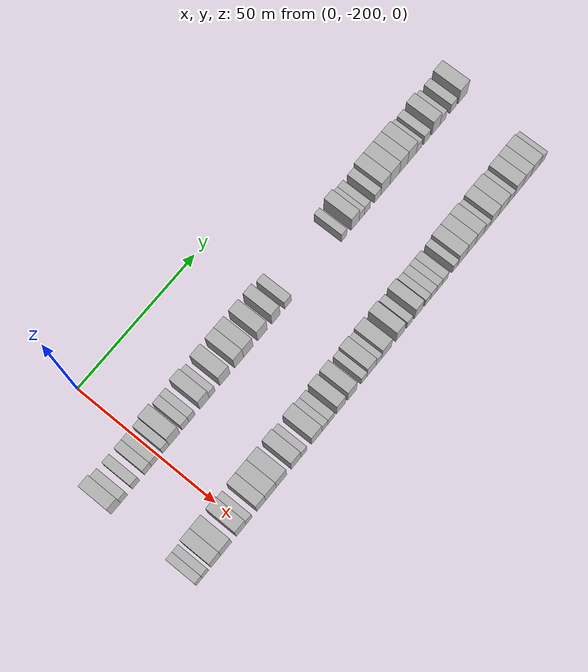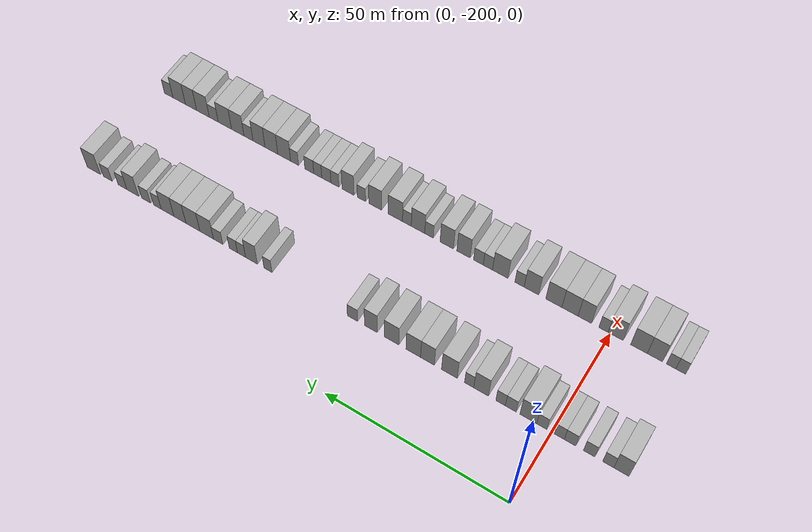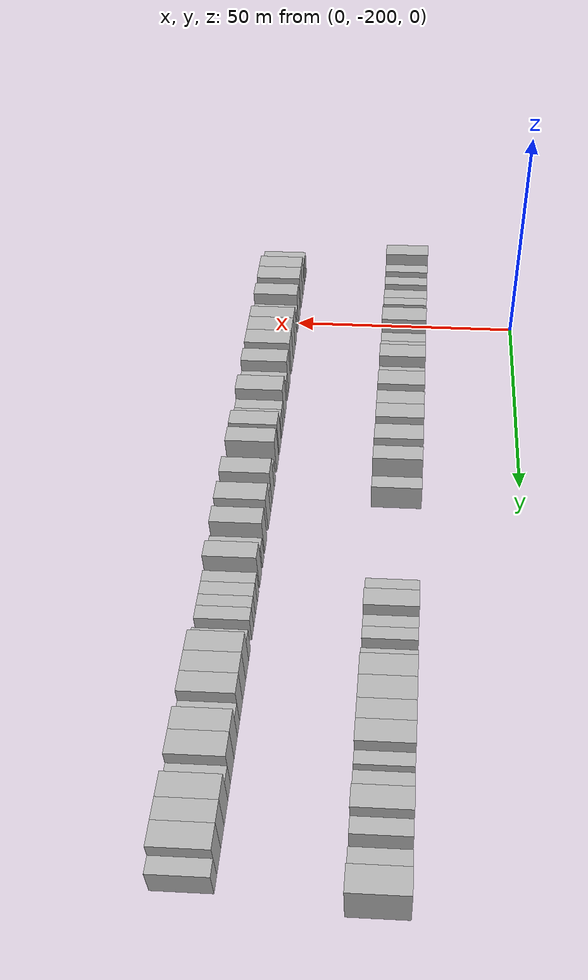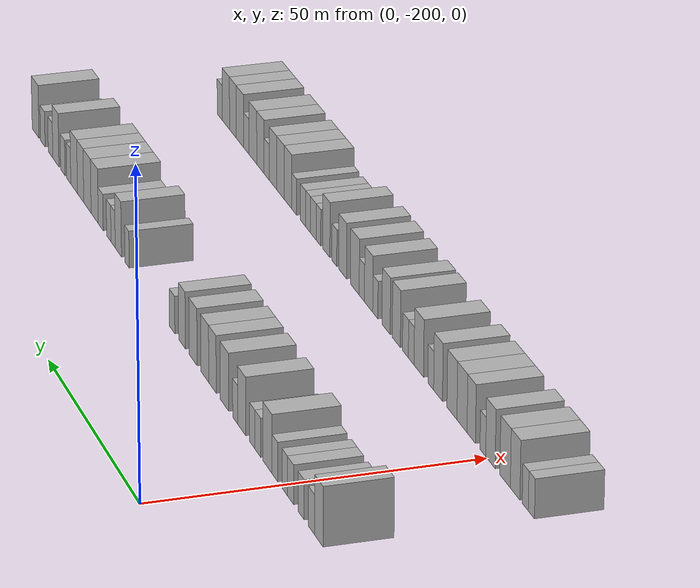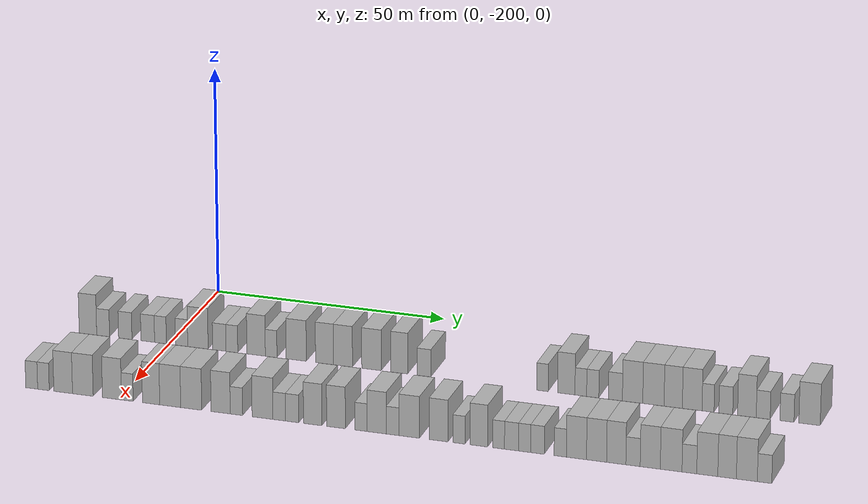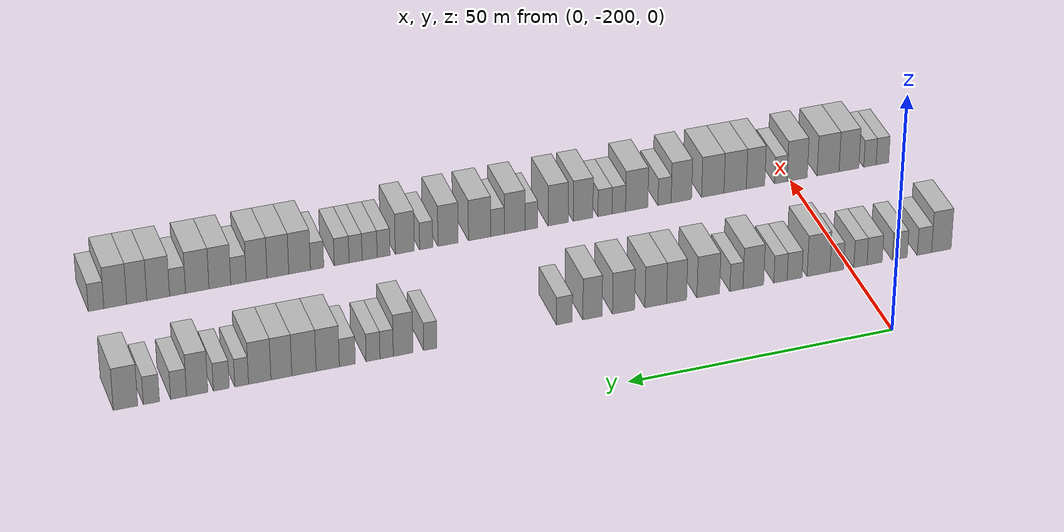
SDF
<sdf version="1.6">
 <world name="default">
  <model name="building_1">
   <static>1</static>
   <pose>25.0000 -218.0600 0 0.000000 0.000000 0.000000</pose>
   <link name="link">
    <pose>0 0 4.50 0 0 0</pose>
    <collision name="collision"><geometry><box><size>10.0000 3.8800 9.0000</size></box></geometry></collision>
    <visual name="visual">
     <cast_shadows>0</cast_shadows>
     <geometry><box><size>10.0000 3.8800 9.0000</size></box></geometry>
     <material>
      <script>
       <uri>model://HANNAS_wall/materials/scripts</uri>
       <uri>model://HANNAS_wall/materials/textures</uri>
       <name>vrc/HANNAS_wall</name>
      </script>
     </material>
    </visual>
   </link>
  </model>
  <model name="building_2">
   <static>1</static>
   <pose>25.0000 -214.6943 0 0.000000 0.000000 0.000000</pose>
   <link name="link">
    <pose>0 0 3.00 0 0 0</pose>
    <collision name="collision"><geometry><box><size>10.0000 2.8513 6.0000</size></box></geometry></collision>
    <visual name="visual">
     <cast_shadows>0</cast_shadows>
     <geometry><box><size>10.0000 2.8513 6.0000</size></box></geometry>
     <material>
      <script>
       <uri>model://HANNAS_wall/materials/scripts</uri>
       <uri>model://HANNAS_wall/materials/textures</uri>
       <name>vrc/HANNAS_wall</name>
      </script>
     </material>
    </visual>
   </link>
  </model>
  <model name="building_3">
   <static>1</static>
   <pose>25.0000 -209.7895 0 0.000000 0.000000 0.000000</pose>
   <link name="link">
    <pose>0 0 3.00 0 0 0</pose>
    <collision name="collision"><geometry><box><size>10.0000 2.9583 6.0000</size></box></geometry></collision>
    <visual name="visual">
     <cast_shadows>0</cast_shadows>
     <geometry><box><size>10.0000 2.9583 6.0000</size></box></geometry>
     <material>
      <script>
       <uri>model://HANNAS_wall/materials/scripts</uri>
       <uri>model://HANNAS_wall/materials/textures</uri>
       <name>vrc/HANNAS_wall</name>
      </script>
     </material>
    </visual>
   </link>
  </model>
  <model name="building_4">
   <static>1</static>
   <pose>25.0000 -204.8114 0 0.000000 0.000000 0.000000</pose>
   <link name="link">
    <pose>0 0 3.00 0 0 0</pose>
    <collision name="collision"><geometry><box><size>10.0000 2.9979 6.0000</size></box></geometry></collision>
    <visual name="visual">
     <cast_shadows>0</cast_shadows>
     <geometry><box><size>10.0000 2.9979 6.0000</size></box></geometry>
     <material>
      <script>
       <uri>model://HANNAS_wall/materials/scripts</uri>
       <uri>model://HANNAS_wall/materials/textures</uri>
       <name>vrc/HANNAS_wall</name>
      </script>
     </material>
    </visual>
   </link>
  </model>
  <model name="building_5">
   <static>1</static>
   <pose>25.0000 -202.0157 0 0.000000 0.000000 0.000000</pose>
   <link name="link">
    <pose>0 0 3.00 0 0 0</pose>
    <collision name="collision"><geometry><box><size>10.0000 2.5935 6.0000</size></box></geometry></collision>
    <visual name="visual">
     <cast_shadows>0</cast_shadows>
     <geometry><box><size>10.0000 2.5935 6.0000</size></box></geometry>
     <material>
      <script>
       <uri>model://HANNAS_wall/materials/scripts</uri>
       <uri>model://HANNAS_wall/materials/textures</uri>
       <name>vrc/HANNAS_wall</name>
      </script>
     </material>
    </visual>
   </link>
  </model>
  <model name="building_6">
   <static>1</static>
   <pose>25.0000 -197.3693 0 0.000000 0.000000 0.000000</pose>
   <link name="link">
    <pose>0 0 3.00 0 0 0</pose>
    <collision name="collision"><geometry><box><size>10.0000 2.6991 6.0000</size></box></geometry></collision>
    <visual name="visual">
     <cast_shadows>0</cast_shadows>
     <geometry><box><size>10.0000 2.6991 6.0000</size></box></geometry>
     <material>
      <script>
       <uri>model://HANNAS_wall/materials/scripts</uri>
       <uri>model://HANNAS_wall/materials/textures</uri>
       <name>vrc/HANNAS_wall</name>
      </script>
     </material>
    </visual>
   </link>
  </model>
  <model name="building_7">
   <static>1</static>
   <pose>25.0000 -193.7817 0 0.000000 0.000000 0.000000</pose>
   <link name="link">
    <pose>0 0 4.50 0 0 0</pose>
    <collision name="collision"><geometry><box><size>10.0000 4.4761 9.0000</size></box></geometry></collision>
    <visual name="visual">
     <cast_shadows>0</cast_shadows>
     <geometry><box><size>10.0000 4.4761 9.0000</size></box></geometry>
     <material>
      <script>
       <uri>model://HANNAS_wall/materials/scripts</uri>
       <uri>model://HANNAS_wall/materials/textures</uri>
       <name>vrc/HANNAS_wall</name>
      </script>
     </material>
    </visual>
   </link>
  </model>
  <model name="building_8">
   <static>1</static>
   <pose>25.0000 -189.0932 0 0.000000 0.000000 0.000000</pose>
   <link name="link">
    <pose>0 0 3.00 0 0 0</pose>
    <collision name="collision"><geometry><box><size>10.0000 2.9010 6.0000</size></box></geometry></collision>
    <visual name="visual">
     <cast_shadows>0</cast_shadows>
     <geometry><box><size>10.0000 2.9010 6.0000</size></box></geometry>
     <material>
      <script>
       <uri>model://HANNAS_wall/materials/scripts</uri>
       <uri>model://HANNAS_wall/materials/textures</uri>
       <name>vrc/HANNAS_wall</name>
      </script>
     </material>
    </visual>
   </link>
  </model>
  <model name="building_9">
   <static>1</static>
   <pose>25.0000 -186.3501 0 0.000000 0.000000 0.000000</pose>
   <link name="link">
    <pose>0 0 3.00 0 0 0</pose>
    <collision name="collision"><geometry><box><size>10.0000 2.5852 6.0000</size></box></geometry></collision>
    <visual name="visual">
     <cast_shadows>0</cast_shadows>
     <geometry><box><size>10.0000 2.5852 6.0000</size></box></geometry>
     <material>
      <script>
       <uri>model://HANNAS_wall/materials/scripts</uri>
       <uri>model://HANNAS_wall/materials/textures</uri>
       <name>vrc/HANNAS_wall</name>
      </script>
     </material>
    </visual>
   </link>
  </model>
  <model name="building_10">
   <static>1</static>
   <pose>25.0000 -181.0532 0 0.000000 0.000000 0.000000</pose>
   <link name="link">
    <pose>0 0 4.50 0 0 0</pose>
    <collision name="collision"><geometry><box><size>10.0000 4.0086 9.0000</size></box></geometry></collision>
    <visual name="visual">
     <cast_shadows>0</cast_shadows>
     <geometry><box><size>10.0000 4.0086 9.0000</size></box></geometry>
     <material>
      <script>
       <uri>model://HANNAS_wall/materials/scripts</uri>
       <uri>model://HANNAS_wall/materials/textures</uri>
       <name>vrc/HANNAS_wall</name>
      </script>
     </material>
    </visual>
   </link>
  </model>
  <model name="building_11">
   <static>1</static>
   <pose>25.0000 -177.7852 0 0.000000 0.000000 0.000000</pose>
   <link name="link">
    <pose>0 0 3.00 0 0 0</pose>
    <collision name="collision"><geometry><box><size>10.0000 2.5274 6.0000</size></box></geometry></collision>
    <visual name="visual">
     <cast_shadows>0</cast_shadows>
     <geometry><box><size>10.0000 2.5274 6.0000</size></box></geometry>
     <material>
      <script>
       <uri>model://HANNAS_wall/materials/scripts</uri>
       <uri>model://HANNAS_wall/materials/textures</uri>
       <name>vrc/HANNAS_wall</name>
      </script>
     </material>
    </visual>
   </link>
  </model>
  <model name="building_12">
   <static>1</static>
   <pose>25.0000 -172.3337 0 0.000000 0.000000 0.000000</pose>
   <link name="link">
    <pose>0 0 4.50 0 0 0</pose>
    <collision name="collision"><geometry><box><size>10.0000 4.3756 9.0000</size></box></geometry></collision>
    <visual name="visual">
     <cast_shadows>0</cast_shadows>
     <geometry><box><size>10.0000 4.3756 9.0000</size></box></geometry>
     <material>
      <script>
       <uri>model://HANNAS_wall/materials/scripts</uri>
       <uri>model://HANNAS_wall/materials/textures</uri>
       <name>vrc/HANNAS_wall</name>
      </script>
     </material>
    </visual>
   </link>
  </model>
  <model name="building_13">
   <static>1</static>
   <pose>25.0000 -166.2220 0 0.000000 0.000000 0.000000</pose>
   <link name="link">
    <pose>0 0 4.50 0 0 0</pose>
    <collision name="collision"><geometry><box><size>10.0000 3.8479 9.0000</size></box></geometry></collision>
    <visual name="visual">
     <cast_shadows>0</cast_shadows>
     <geometry><box><size>10.0000 3.8479 9.0000</size></box></geometry>
     <material>
      <script>
       <uri>model://HANNAS_wall/materials/scripts</uri>
       <uri>model://HANNAS_wall/materials/textures</uri>
       <name>vrc/HANNAS_wall</name>
      </script>
     </material>
    </visual>
   </link>
  </model>
  <model name="building_14">
   <static>1</static>
   <pose>25.0000 -162.2357 0 0.000000 0.000000 0.000000</pose>
   <link name="link">
    <pose>0 0 4.50 0 0 0</pose>
    <collision name="collision"><geometry><box><size>10.0000 4.1246 9.0000</size></box></geometry></collision>
    <visual name="visual">
     <cast_shadows>0</cast_shadows>
     <geometry><box><size>10.0000 4.1246 9.0000</size></box></geometry>
     <material>
      <script>
       <uri>model://HANNAS_wall/materials/scripts</uri>
       <uri>model://HANNAS_wall/materials/textures</uri>
       <name>vrc/HANNAS_wall</name>
      </script>
     </material>
    </visual>
   </link>
  </model>
  <model name="building_15">
   <static>1</static>
   <pose>25.0000 -156.0748 0 0.000000 0.000000 0.000000</pose>
   <link name="link">
    <pose>0 0 4.50 0 0 0</pose>
    <collision name="collision"><geometry><box><size>10.0000 4.1973 9.0000</size></box></geometry></collision>
    <visual name="visual">
     <cast_shadows>0</cast_shadows>
     <geometry><box><size>10.0000 4.1973 9.0000</size></box></geometry>
     <material>
      <script>
       <uri>model://HANNAS_wall/materials/scripts</uri>
       <uri>model://HANNAS_wall/materials/textures</uri>
       <name>vrc/HANNAS_wall</name>
      </script>
     </material>
    </visual>
   </link>
  </model>
  <model name="building_16">
   <static>1</static>
   <pose>25.0000 -150.1493 0 0.000000 0.000000 0.000000</pose>
   <link name="link">
    <pose>0 0 4.50 0 0 0</pose>
    <collision name="collision"><geometry><box><size>10.0000 3.6537 9.0000</size></box></geometry></collision>
    <visual name="visual">
     <cast_shadows>0</cast_shadows>
     <geometry><box><size>10.0000 3.6537 9.0000</size></box></geometry>
     <material>
      <script>
       <uri>model://HANNAS_wall/materials/scripts</uri>
       <uri>model://HANNAS_wall/materials/textures</uri>
       <name>vrc/HANNAS_wall</name>
      </script>
     </material>
    </visual>
   </link>
  </model>
  <model name="building_17">
   <static>1</static>
   <pose>25.0000 -144.8333 0 0.000000 0.000000 0.000000</pose>
   <link name="link">
    <pose>0 0 3.00 0 0 0</pose>
    <collision name="collision"><geometry><box><size>10.0000 2.9784 6.0000</size></box></geometry></collision>
    <visual name="visual">
     <cast_shadows>0</cast_shadows>
     <geometry><box><size>10.0000 2.9784 6.0000</size></box></geometry>
     <material>
      <script>
       <uri>model://HANNAS_wall/materials/scripts</uri>
       <uri>model://HANNAS_wall/materials/textures</uri>
       <name>vrc/HANNAS_wall</name>
      </script>
     </material>
    </visual>
   </link>
  </model>
  <model name="building_18">
   <static>1</static>
   <pose>25.0000 -119.6848 0 0.000000 0.000000 0.000000</pose>
   <link name="link">
    <pose>0 0 3.00 0 0 0</pose>
    <collision name="collision"><geometry><box><size>10.0000 2.4395 6.0000</size></box></geometry></collision>
    <visual name="visual">
     <cast_shadows>0</cast_shadows>
     <geometry><box><size>10.0000 2.4395 6.0000</size></box></geometry>
     <material>
      <script>
       <uri>model://HANNAS_wall/materials/scripts</uri>
       <uri>model://HANNAS_wall/materials/textures</uri>
       <name>vrc/HANNAS_wall</name>
      </script>
     </material>
    </visual>
   </link>
  </model>
  <model name="building_19">
   <static>1</static>
   <pose>25.0000 -114.6445 0 0.000000 0.000000 0.000000</pose>
   <link name="link">
    <pose>0 0 4.50 0 0 0</pose>
    <collision name="collision"><geometry><box><size>10.0000 3.6411 9.0000</size></box></geometry></collision>
    <visual name="visual">
     <cast_shadows>0</cast_shadows>
     <geometry><box><size>10.0000 3.6411 9.0000</size></box></geometry>
     <material>
      <script>
       <uri>model://HANNAS_wall/materials/scripts</uri>
       <uri>model://HANNAS_wall/materials/textures</uri>
       <name>vrc/HANNAS_wall</name>
      </script>
     </material>
    </visual>
   </link>
  </model>
  <model name="building_20">
   <static>1</static>
   <pose>25.0000 -111.5989 0 0.000000 0.000000 0.000000</pose>
   <link name="link">
    <pose>0 0 3.00 0 0 0</pose>
    <collision name="collision"><geometry><box><size>10.0000 2.4501 6.0000</size></box></geometry></collision>
    <visual name="visual">
     <cast_shadows>0</cast_shadows>
     <geometry><box><size>10.0000 2.4501 6.0000</size></box></geometry>
     <material>
      <script>
       <uri>model://HANNAS_wall/materials/scripts</uri>
       <uri>model://HANNAS_wall/materials/textures</uri>
       <name>vrc/HANNAS_wall</name>
      </script>
     </material>
    </visual>
   </link>
  </model>
  <model name="building_21">
   <static>1</static>
   <pose>25.0000 -109.0927 0 0.000000 0.000000 0.000000</pose>
   <link name="link">
    <pose>0 0 3.00 0 0 0</pose>
    <collision name="collision"><geometry><box><size>10.0000 2.5622 6.0000</size></box></geometry></collision>
    <visual name="visual">
     <cast_shadows>0</cast_shadows>
     <geometry><box><size>10.0000 2.5622 6.0000</size></box></geometry>
     <material>
      <script>
       <uri>model://HANNAS_wall/materials/scripts</uri>
       <uri>model://HANNAS_wall/materials/textures</uri>
       <name>vrc/HANNAS_wall</name>
      </script>
     </material>
    </visual>
   </link>
  </model>
  <model name="building_22">
   <static>1</static>
   <pose>25.0000 -104.3438 0 0.000000 0.000000 0.000000</pose>
   <link name="link">
    <pose>0 0 3.00 0 0 0</pose>
    <collision name="collision"><geometry><box><size>10.0000 2.9356 6.0000</size></box></geometry></collision>
    <visual name="visual">
     <cast_shadows>0</cast_shadows>
     <geometry><box><size>10.0000 2.9356 6.0000</size></box></geometry>
     <material>
      <script>
       <uri>model://HANNAS_wall/materials/scripts</uri>
       <uri>model://HANNAS_wall/materials/textures</uri>
       <name>vrc/HANNAS_wall</name>
      </script>
     </material>
    </visual>
   </link>
  </model>
  <model name="building_23">
   <static>1</static>
   <pose>25.0000 -100.7516 0 0.000000 0.000000 0.000000</pose>
   <link name="link">
    <pose>0 0 4.50 0 0 0</pose>
    <collision name="collision"><geometry><box><size>10.0000 4.2489 9.0000</size></box></geometry></collision>
    <visual name="visual">
     <cast_shadows>0</cast_shadows>
     <geometry><box><size>10.0000 4.2489 9.0000</size></box></geometry>
     <material>
      <script>
       <uri>model://HANNAS_wall/materials/scripts</uri>
       <uri>model://HANNAS_wall/materials/textures</uri>
       <name>vrc/HANNAS_wall</name>
      </script>
     </material>
    </visual>
   </link>
  </model>
  <model name="building_24">
   <static>1</static>
   <pose>25.0000 -96.4063 0 0.000000 0.000000 0.000000</pose>
   <link name="link">
    <pose>0 0 4.50 0 0 0</pose>
    <collision name="collision"><geometry><box><size>10.0000 4.4418 9.0000</size></box></geometry></collision>
    <visual name="visual">
     <cast_shadows>0</cast_shadows>
     <geometry><box><size>10.0000 4.4418 9.0000</size></box></geometry>
     <material>
      <script>
       <uri>model://HANNAS_wall/materials/scripts</uri>
       <uri>model://HANNAS_wall/materials/textures</uri>
       <name>vrc/HANNAS_wall</name>
      </script>
     </material>
    </visual>
   </link>
  </model>
  <model name="building_25">
   <static>1</static>
   <pose>25.0000 -92.2871 0 0.000000 0.000000 0.000000</pose>
   <link name="link">
    <pose>0 0 4.50 0 0 0</pose>
    <collision name="collision"><geometry><box><size>10.0000 3.7966 9.0000</size></box></geometry></collision>
    <visual name="visual">
     <cast_shadows>0</cast_shadows>
     <geometry><box><size>10.0000 3.7966 9.0000</size></box></geometry>
     <material>
      <script>
       <uri>model://HANNAS_wall/materials/scripts</uri>
       <uri>model://HANNAS_wall/materials/textures</uri>
       <name>vrc/HANNAS_wall</name>
      </script>
     </material>
    </visual>
   </link>
  </model>
  <model name="building_26">
   <static>1</static>
   <pose>25.0000 -88.3463 0 0.000000 0.000000 0.000000</pose>
   <link name="link">
    <pose>0 0 4.50 0 0 0</pose>
    <collision name="collision"><geometry><box><size>10.0000 4.0851 9.0000</size></box></geometry></collision>
    <visual name="visual">
     <cast_shadows>0</cast_shadows>
     <geometry><box><size>10.0000 4.0851 9.0000</size></box></geometry>
     <material>
      <script>
       <uri>model://HANNAS_wall/materials/scripts</uri>
       <uri>model://HANNAS_wall/materials/textures</uri>
       <name>vrc/HANNAS_wall</name>
      </script>
     </material>
    </visual>
   </link>
  </model>
  <model name="building_27">
   <static>1</static>
   <pose>25.0000 -85.0613 0 0.000000 0.000000 0.000000</pose>
   <link name="link">
    <pose>0 0 3.00 0 0 0</pose>
    <collision name="collision"><geometry><box><size>10.0000 2.4848 6.0000</size></box></geometry></collision>
    <visual name="visual">
     <cast_shadows>0</cast_shadows>
     <geometry><box><size>10.0000 2.4848 6.0000</size></box></geometry>
     <material>
      <script>
       <uri>model://HANNAS_wall/materials/scripts</uri>
       <uri>model://HANNAS_wall/materials/textures</uri>
       <name>vrc/HANNAS_wall</name>
      </script>
     </material>
    </visual>
   </link>
  </model>
  <model name="building_28">
   <static>1</static>
   <pose>25.0000 -81.3855 0 0.000000 0.000000 0.000000</pose>
   <link name="link">
    <pose>0 0 3.00 0 0 0</pose>
    <collision name="collision"><geometry><box><size>10.0000 2.8669 6.0000</size></box></geometry></collision>
    <visual name="visual">
     <cast_shadows>0</cast_shadows>
     <geometry><box><size>10.0000 2.8669 6.0000</size></box></geometry>
     <material>
      <script>
       <uri>model://HANNAS_wall/materials/scripts</uri>
       <uri>model://HANNAS_wall/materials/textures</uri>
       <name>vrc/HANNAS_wall</name>
      </script>
     </material>
    </visual>
   </link>
  </model>
  <model name="building_29">
   <static>1</static>
   <pose>25.0000 -77.0299 0 0.000000 0.000000 0.000000</pose>
   <link name="link">
    <pose>0 0 4.50 0 0 0</pose>
    <collision name="collision"><geometry><box><size>10.0000 3.8443 9.0000</size></box></geometry></collision>
    <visual name="visual">
     <cast_shadows>0</cast_shadows>
     <geometry><box><size>10.0000 3.8443 9.0000</size></box></geometry>
     <material>
      <script>
       <uri>model://HANNAS_wall/materials/scripts</uri>
       <uri>model://HANNAS_wall/materials/textures</uri>
       <name>vrc/HANNAS_wall</name>
      </script>
     </material>
    </visual>
   </link>
  </model>
  <model name="building_30">
   <static>1</static>
   <pose>25.0000 -73.6719 0 0.000000 0.000000 0.000000</pose>
   <link name="link">
    <pose>0 0 3.00 0 0 0</pose>
    <collision name="collision"><geometry><box><size>10.0000 2.8716 6.0000</size></box></geometry></collision>
    <visual name="visual">
     <cast_shadows>0</cast_shadows>
     <geometry><box><size>10.0000 2.8716 6.0000</size></box></geometry>
     <material>
      <script>
       <uri>model://HANNAS_wall/materials/scripts</uri>
       <uri>model://HANNAS_wall/materials/textures</uri>
       <name>vrc/HANNAS_wall</name>
      </script>
     </material>
    </visual>
   </link>
  </model>
  <model name="building_31">
   <static>1</static>
   <pose>25.0000 -68.7926 0 0.000000 0.000000 0.000000</pose>
   <link name="link">
    <pose>0 0 3.00 0 0 0</pose>
    <collision name="collision"><geometry><box><size>10.0000 2.8871 6.0000</size></box></geometry></collision>
    <visual name="visual">
     <cast_shadows>0</cast_shadows>
     <geometry><box><size>10.0000 2.8871 6.0000</size></box></geometry>
     <material>
      <script>
       <uri>model://HANNAS_wall/materials/scripts</uri>
       <uri>model://HANNAS_wall/materials/textures</uri>
       <name>vrc/HANNAS_wall</name>
      </script>
     </material>
    </visual>
   </link>
  </model>
  <model name="building_32">
   <static>1</static>
   <pose>25.0000 -64.1638 0 0.000000 0.000000 0.000000</pose>
   <link name="link">
    <pose>0 0 4.50 0 0 0</pose>
    <collision name="collision"><geometry><box><size>10.0000 4.3705 9.0000</size></box></geometry></collision>
    <visual name="visual">
     <cast_shadows>0</cast_shadows>
     <geometry><box><size>10.0000 4.3705 9.0000</size></box></geometry>
     <material>
      <script>
       <uri>model://HANNAS_wall/materials/scripts</uri>
       <uri>model://HANNAS_wall/materials/textures</uri>
       <name>vrc/HANNAS_wall</name>
      </script>
     </material>
    </visual>
   </link>
  </model>
  <model name="building_106">
   <static>1</static>
   <pose>55.0000 -218.7120 0 0.000000 0.000000 0.000000</pose>
   <link name="link">
    <pose>0 0 3.00 0 0 0</pose>
    <collision name="collision"><geometry><box><size>10.0000 2.5759 6.0000</size></box></geometry></collision>
    <visual name="visual">
     <cast_shadows>0</cast_shadows>
     <geometry><box><size>10.0000 2.5759 6.0000</size></box></geometry>
     <material>
      <script>
       <uri>model://HANNAS_wall/materials/scripts</uri>
       <uri>model://HANNAS_wall/materials/textures</uri>
       <name>vrc/HANNAS_wall</name>
      </script>
     </material>
    </visual>
   </link>
  </model>
  <model name="building_107">
   <static>1</static>
   <pose>55.0000 -216.1647 0 0.000000 0.000000 0.000000</pose>
   <link name="link">
    <pose>0 0 3.00 0 0 0</pose>
    <collision name="collision"><geometry><box><size>10.0000 2.5186 6.0000</size></box></geometry></collision>
    <visual name="visual">
     <cast_shadows>0</cast_shadows>
     <geometry><box><size>10.0000 2.5186 6.0000</size></box></geometry>
     <material>
      <script>
       <uri>model://HANNAS_wall/materials/scripts</uri>
       <uri>model://HANNAS_wall/materials/textures</uri>
       <name>vrc/HANNAS_wall</name>
      </script>
     </material>
    </visual>
   </link>
  </model>
  <model name="building_108">
   <static>1</static>
   <pose>55.0000 -211.8845 0 0.000000 0.000000 0.000000</pose>
   <link name="link">
    <pose>0 0 4.50 0 0 0</pose>
    <collision name="collision"><geometry><box><size>10.0000 4.0418 9.0000</size></box></geometry></collision>
    <visual name="visual">
     <cast_shadows>0</cast_shadows>
     <geometry><box><size>10.0000 4.0418 9.0000</size></box></geometry>
     <material>
      <script>
       <uri>model://HANNAS_wall/materials/scripts</uri>
       <uri>model://HANNAS_wall/materials/textures</uri>
       <name>vrc/HANNAS_wall</name>
      </script>
     </material>
    </visual>
   </link>
  </model>
  <model name="building_109">
   <static>1</static>
   <pose>55.0000 -207.6277 0 0.000000 0.000000 0.000000</pose>
   <link name="link">
    <pose>0 0 4.50 0 0 0</pose>
    <collision name="collision"><geometry><box><size>10.0000 4.4718 9.0000</size></box></geometry></collision>
    <visual name="visual">
     <cast_shadows>0</cast_shadows>
     <geometry><box><size>10.0000 4.4718 9.0000</size></box></geometry>
     <material>
      <script>
       <uri>model://HANNAS_wall/materials/scripts</uri>
       <uri>model://HANNAS_wall/materials/textures</uri>
       <name>vrc/HANNAS_wall</name>
      </script>
     </material>
    </visual>
   </link>
  </model>
  <model name="building_110">
   <static>1</static>
   <pose>55.0000 -201.3445 0 0.000000 0.000000 0.000000</pose>
   <link name="link">
    <pose>0 0 4.50 0 0 0</pose>
    <collision name="collision"><geometry><box><size>10.0000 4.0946 9.0000</size></box></geometry></collision>
    <visual name="visual">
     <cast_shadows>0</cast_shadows>
     <geometry><box><size>10.0000 4.0946 9.0000</size></box></geometry>
     <material>
      <script>
       <uri>model://HANNAS_wall/materials/scripts</uri>
       <uri>model://HANNAS_wall/materials/textures</uri>
       <name>vrc/HANNAS_wall</name>
      </script>
     </material>
    </visual>
   </link>
  </model>
  <model name="building_111">
   <static>1</static>
   <pose>55.0000 -198.0418 0 0.000000 0.000000 0.000000</pose>
   <link name="link">
    <pose>0 0 3.00 0 0 0</pose>
    <collision name="collision"><geometry><box><size>10.0000 2.5108 6.0000</size></box></geometry></collision>
    <visual name="visual">
     <cast_shadows>0</cast_shadows>
     <geometry><box><size>10.0000 2.5108 6.0000</size></box></geometry>
     <material>
      <script>
       <uri>model://HANNAS_wall/materials/scripts</uri>
       <uri>model://HANNAS_wall/materials/textures</uri>
       <name>vrc/HANNAS_wall</name>
      </script>
     </material>
    </visual>
   </link>
  </model>
  <model name="building_112">
   <static>1</static>
   <pose>55.0000 -192.9368 0 0.000000 0.000000 0.000000</pose>
   <link name="link">
    <pose>0 0 4.50 0 0 0</pose>
    <collision name="collision"><geometry><box><size>10.0000 3.6991 9.0000</size></box></geometry></collision>
    <visual name="visual">
     <cast_shadows>0</cast_shadows>
     <geometry><box><size>10.0000 3.6991 9.0000</size></box></geometry>
     <material>
      <script>
       <uri>model://HANNAS_wall/materials/scripts</uri>
       <uri>model://HANNAS_wall/materials/textures</uri>
       <name>vrc/HANNAS_wall</name>
      </script>
     </material>
    </visual>
   </link>
  </model>
  <model name="building_113">
   <static>1</static>
   <pose>55.0000 -188.8436 0 0.000000 0.000000 0.000000</pose>
   <link name="link">
    <pose>0 0 4.50 0 0 0</pose>
    <collision name="collision"><geometry><box><size>10.0000 4.4874 9.0000</size></box></geometry></collision>
    <visual name="visual">
     <cast_shadows>0</cast_shadows>
     <geometry><box><size>10.0000 4.4874 9.0000</size></box></geometry>
     <material>
      <script>
       <uri>model://HANNAS_wall/materials/scripts</uri>
       <uri>model://HANNAS_wall/materials/textures</uri>
       <name>vrc/HANNAS_wall</name>
      </script>
     </material>
    </visual>
   </link>
  </model>
  <model name="building_114">
   <static>1</static>
   <pose>55.0000 -184.3547 0 0.000000 0.000000 0.000000</pose>
   <link name="link">
    <pose>0 0 4.50 0 0 0</pose>
    <collision name="collision"><geometry><box><size>10.0000 4.4904 9.0000</size></box></geometry></collision>
    <visual name="visual">
     <cast_shadows>0</cast_shadows>
     <geometry><box><size>10.0000 4.4904 9.0000</size></box></geometry>
     <material>
      <script>
       <uri>model://HANNAS_wall/materials/scripts</uri>
       <uri>model://HANNAS_wall/materials/textures</uri>
       <name>vrc/HANNAS_wall</name>
      </script>
     </material>
    </visual>
   </link>
  </model>
  <model name="building_115">
   <static>1</static>
   <pose>55.0000 -178.0733 0 0.000000 0.000000 0.000000</pose>
   <link name="link">
    <pose>0 0 4.50 0 0 0</pose>
    <collision name="collision"><geometry><box><size>10.0000 4.0724 9.0000</size></box></geometry></collision>
    <visual name="visual">
     <cast_shadows>0</cast_shadows>
     <geometry><box><size>10.0000 4.0724 9.0000</size></box></geometry>
     <material>
      <script>
       <uri>model://HANNAS_wall/materials/scripts</uri>
       <uri>model://HANNAS_wall/materials/textures</uri>
       <name>vrc/HANNAS_wall</name>
      </script>
     </material>
    </visual>
   </link>
  </model>
  <model name="building_116">
   <static>1</static>
   <pose>55.0000 -174.7232 0 0.000000 0.000000 0.000000</pose>
   <link name="link">
    <pose>0 0 3.00 0 0 0</pose>
    <collision name="collision"><geometry><box><size>10.0000 2.6278 6.0000</size></box></geometry></collision>
    <visual name="visual">
     <cast_shadows>0</cast_shadows>
     <geometry><box><size>10.0000 2.6278 6.0000</size></box></geometry>
     <material>
      <script>
       <uri>model://HANNAS_wall/materials/scripts</uri>
       <uri>model://HANNAS_wall/materials/textures</uri>
       <name>vrc/HANNAS_wall</name>
      </script>
     </material>
    </visual>
   </link>
  </model>
  <model name="building_117">
   <static>1</static>
   <pose>55.0000 -169.2026 0 0.000000 0.000000 0.000000</pose>
   <link name="link">
    <pose>0 0 4.50 0 0 0</pose>
    <collision name="collision"><geometry><box><size>10.0000 4.4134 9.0000</size></box></geometry></collision>
    <visual name="visual">
     <cast_shadows>0</cast_shadows>
     <geometry><box><size>10.0000 4.4134 9.0000</size></box></geometry>
     <material>
      <script>
       <uri>model://HANNAS_wall/materials/scripts</uri>
       <uri>model://HANNAS_wall/materials/textures</uri>
       <name>vrc/HANNAS_wall</name>
      </script>
     </material>
    </visual>
   </link>
  </model>
  <model name="building_118">
   <static>1</static>
   <pose>55.0000 -165.6588 0 0.000000 0.000000 0.000000</pose>
   <link name="link">
    <pose>0 0 3.00 0 0 0</pose>
    <collision name="collision"><geometry><box><size>10.0000 2.6741 6.0000</size></box></geometry></collision>
    <visual name="visual">
     <cast_shadows>0</cast_shadows>
     <geometry><box><size>10.0000 2.6741 6.0000</size></box></geometry>
     <material>
      <script>
       <uri>model://HANNAS_wall/materials/scripts</uri>
       <uri>model://HANNAS_wall/materials/textures</uri>
       <name>vrc/HANNAS_wall</name>
      </script>
     </material>
    </visual>
   </link>
  </model>
  <model name="building_119">
   <static>1</static>
   <pose>55.0000 -162.9270 0 0.000000 0.000000 0.000000</pose>
   <link name="link">
    <pose>0 0 3.00 0 0 0</pose>
    <collision name="collision"><geometry><box><size>10.0000 2.7895 6.0000</size></box></geometry></collision>
    <visual name="visual">
     <cast_shadows>0</cast_shadows>
     <geometry><box><size>10.0000 2.7895 6.0000</size></box></geometry>
     <material>
      <script>
       <uri>model://HANNAS_wall/materials/scripts</uri>
       <uri>model://HANNAS_wall/materials/textures</uri>
       <name>vrc/HANNAS_wall</name>
      </script>
     </material>
    </visual>
   </link>
  </model>
  <model name="building_120">
   <static>1</static>
   <pose>55.0000 -158.5984 0 0.000000 0.000000 0.000000</pose>
   <link name="link">
    <pose>0 0 4.50 0 0 0</pose>
    <collision name="collision"><geometry><box><size>10.0000 3.8678 9.0000</size></box></geometry></collision>
    <visual name="visual">
     <cast_shadows>0</cast_shadows>
     <geometry><box><size>10.0000 3.8678 9.0000</size></box></geometry>
     <material>
      <script>
       <uri>model://HANNAS_wall/materials/scripts</uri>
       <uri>model://HANNAS_wall/materials/textures</uri>
       <name>vrc/HANNAS_wall</name>
      </script>
     </material>
    </visual>
   </link>
  </model>
  <model name="building_121">
   <static>1</static>
   <pose>55.0000 -153.6993 0 0.000000 0.000000 0.000000</pose>
   <link name="link">
    <pose>0 0 4.50 0 0 0</pose>
    <collision name="collision"><geometry><box><size>10.0000 3.9303 9.0000</size></box></geometry></collision>
    <visual name="visual">
     <cast_shadows>0</cast_shadows>
     <geometry><box><size>10.0000 3.9303 9.0000</size></box></geometry>
     <material>
      <script>
       <uri>model://HANNAS_wall/materials/scripts</uri>
       <uri>model://HANNAS_wall/materials/textures</uri>
       <name>vrc/HANNAS_wall</name>
      </script>
     </material>
    </visual>
   </link>
  </model>
  <model name="building_122">
   <static>1</static>
   <pose>55.0000 -148.4706 0 0.000000 0.000000 0.000000</pose>
   <link name="link">
    <pose>0 0 3.00 0 0 0</pose>
    <collision name="collision"><geometry><box><size>10.0000 2.5273 6.0000</size></box></geometry></collision>
    <visual name="visual">
     <cast_shadows>0</cast_shadows>
     <geometry><box><size>10.0000 2.5273 6.0000</size></box></geometry>
     <material>
      <script>
       <uri>model://HANNAS_wall/materials/scripts</uri>
       <uri>model://HANNAS_wall/materials/textures</uri>
       <name>vrc/HANNAS_wall</name>
      </script>
     </material>
    </visual>
   </link>
  </model>
  <model name="building_123">
   <static>1</static>
   <pose>55.0000 -145.1953 0 0.000000 0.000000 0.000000</pose>
   <link name="link">
    <pose>0 0 4.50 0 0 0</pose>
    <collision name="collision"><geometry><box><size>10.0000 4.0233 9.0000</size></box></geometry></collision>
    <visual name="visual">
     <cast_shadows>0</cast_shadows>
     <geometry><box><size>10.0000 4.0233 9.0000</size></box></geometry>
     <material>
      <script>
       <uri>model://HANNAS_wall/materials/scripts</uri>
       <uri>model://HANNAS_wall/materials/textures</uri>
       <name>vrc/HANNAS_wall</name>
      </script>
     </material>
    </visual>
   </link>
  </model>
  <model name="building_124">
   <static>1</static>
   <pose>55.0000 -141.8744 0 0.000000 0.000000 0.000000</pose>
   <link name="link">
    <pose>0 0 3.00 0 0 0</pose>
    <collision name="collision"><geometry><box><size>10.0000 2.6185 6.0000</size></box></geometry></collision>
    <visual name="visual">
     <cast_shadows>0</cast_shadows>
     <geometry><box><size>10.0000 2.6185 6.0000</size></box></geometry>
     <material>
      <script>
       <uri>model://HANNAS_wall/materials/scripts</uri>
       <uri>model://HANNAS_wall/materials/textures</uri>
       <name>vrc/HANNAS_wall</name>
      </script>
     </material>
    </visual>
   </link>
  </model>
  <model name="building_125">
   <static>1</static>
   <pose>55.0000 -138.3995 0 0.000000 0.000000 0.000000</pose>
   <link name="link">
    <pose>0 0 4.50 0 0 0</pose>
    <collision name="collision"><geometry><box><size>10.0000 4.3313 9.0000</size></box></geometry></collision>
    <visual name="visual">
     <cast_shadows>0</cast_shadows>
     <geometry><box><size>10.0000 4.3313 9.0000</size></box></geometry>
     <material>
      <script>
       <uri>model://HANNAS_wall/materials/scripts</uri>
       <uri>model://HANNAS_wall/materials/textures</uri>
       <name>vrc/HANNAS_wall</name>
      </script>
     </material>
    </visual>
   </link>
  </model>
  <model name="building_126">
   <static>1</static>
   <pose>55.0000 -132.2876 0 0.000000 0.000000 0.000000</pose>
   <link name="link">
    <pose>0 0 4.50 0 0 0</pose>
    <collision name="collision"><geometry><box><size>10.0000 3.8927 9.0000</size></box></geometry></collision>
    <visual name="visual">
     <cast_shadows>0</cast_shadows>
     <geometry><box><size>10.0000 3.8927 9.0000</size></box></geometry>
     <material>
      <script>
       <uri>model://HANNAS_wall/materials/scripts</uri>
       <uri>model://HANNAS_wall/materials/textures</uri>
       <name>vrc/HANNAS_wall</name>
      </script>
     </material>
    </visual>
   </link>
  </model>
  <model name="building_127">
   <static>1</static>
   <pose>55.0000 -128.0716 0 0.000000 0.000000 0.000000</pose>
   <link name="link">
    <pose>0 0 3.00 0 0 0</pose>
    <collision name="collision"><geometry><box><size>10.0000 2.5392 6.0000</size></box></geometry></collision>
    <visual name="visual">
     <cast_shadows>0</cast_shadows>
     <geometry><box><size>10.0000 2.5392 6.0000</size></box></geometry>
     <material>
      <script>
       <uri>model://HANNAS_wall/materials/scripts</uri>
       <uri>model://HANNAS_wall/materials/textures</uri>
       <name>vrc/HANNAS_wall</name>
      </script>
     </material>
    </visual>
   </link>
  </model>
  <model name="building_128">
   <static>1</static>
   <pose>55.0000 -123.9661 0 0.000000 0.000000 0.000000</pose>
   <link name="link">
    <pose>0 0 4.50 0 0 0</pose>
    <collision name="collision"><geometry><box><size>10.0000 3.6718 9.0000</size></box></geometry></collision>
    <visual name="visual">
     <cast_shadows>0</cast_shadows>
     <geometry><box><size>10.0000 3.6718 9.0000</size></box></geometry>
     <material>
      <script>
       <uri>model://HANNAS_wall/materials/scripts</uri>
       <uri>model://HANNAS_wall/materials/textures</uri>
       <name>vrc/HANNAS_wall</name>
      </script>
     </material>
    </visual>
   </link>
  </model>
  <model name="building_129">
   <static>1</static>
   <pose>55.0000 -119.8977 0 0.000000 0.000000 0.000000</pose>
   <link name="link">
    <pose>0 0 3.00 0 0 0</pose>
    <collision name="collision"><geometry><box><size>10.0000 2.4650 6.0000</size></box></geometry></collision>
    <visual name="visual">
     <cast_shadows>0</cast_shadows>
     <geometry><box><size>10.0000 2.4650 6.0000</size></box></geometry>
     <material>
      <script>
       <uri>model://HANNAS_wall/materials/scripts</uri>
       <uri>model://HANNAS_wall/materials/textures</uri>
       <name>vrc/HANNAS_wall</name>
      </script>
     </material>
    </visual>
   </link>
  </model>
  <model name="building_130">
   <static>1</static>
   <pose>55.0000 -117.2254 0 0.000000 0.000000 0.000000</pose>
   <link name="link">
    <pose>0 0 3.00 0 0 0</pose>
    <collision name="collision"><geometry><box><size>10.0000 2.8797 6.0000</size></box></geometry></collision>
    <visual name="visual">
     <cast_shadows>0</cast_shadows>
     <geometry><box><size>10.0000 2.8797 6.0000</size></box></geometry>
     <material>
      <script>
       <uri>model://HANNAS_wall/materials/scripts</uri>
       <uri>model://HANNAS_wall/materials/textures</uri>
       <name>vrc/HANNAS_wall</name>
      </script>
     </material>
    </visual>
   </link>
  </model>
  <model name="building_131">
   <static>1</static>
   <pose>55.0000 -114.5349 0 0.000000 0.000000 0.000000</pose>
   <link name="link">
    <pose>0 0 3.00 0 0 0</pose>
    <collision name="collision"><geometry><box><size>10.0000 2.5014 6.0000</size></box></geometry></collision>
    <visual name="visual">
     <cast_shadows>0</cast_shadows>
     <geometry><box><size>10.0000 2.5014 6.0000</size></box></geometry>
     <material>
      <script>
       <uri>model://HANNAS_wall/materials/scripts</uri>
       <uri>model://HANNAS_wall/materials/textures</uri>
       <name>vrc/HANNAS_wall</name>
      </script>
     </material>
    </visual>
   </link>
  </model>
  <model name="building_132">
   <static>1</static>
   <pose>55.0000 -111.8807 0 0.000000 0.000000 0.000000</pose>
   <link name="link">
    <pose>0 0 3.00 0 0 0</pose>
    <collision name="collision"><geometry><box><size>10.0000 2.8070 6.0000</size></box></geometry></collision>
    <visual name="visual">
     <cast_shadows>0</cast_shadows>
     <geometry><box><size>10.0000 2.8070 6.0000</size></box></geometry>
     <material>
      <script>
       <uri>model://HANNAS_wall/materials/scripts</uri>
       <uri>model://HANNAS_wall/materials/textures</uri>
       <name>vrc/HANNAS_wall</name>
      </script>
     </material>
    </visual>
   </link>
  </model>
  <model name="building_133">
   <static>1</static>
   <pose>55.0000 -107.2165 0 0.000000 0.000000 0.000000</pose>
   <link name="link">
    <pose>0 0 3.00 0 0 0</pose>
    <collision name="collision"><geometry><box><size>10.0000 2.5213 6.0000</size></box></geometry></collision>
    <visual name="visual">
     <cast_shadows>0</cast_shadows>
     <geometry><box><size>10.0000 2.5213 6.0000</size></box></geometry>
     <material>
      <script>
       <uri>model://HANNAS_wall/materials/scripts</uri>
       <uri>model://HANNAS_wall/materials/textures</uri>
       <name>vrc/HANNAS_wall</name>
      </script>
     </material>
    </visual>
   </link>
  </model>
  <model name="building_134">
   <static>1</static>
   <pose>55.0000 -103.9038 0 0.000000 0.000000 0.000000</pose>
   <link name="link">
    <pose>0 0 4.50 0 0 0</pose>
    <collision name="collision"><geometry><box><size>10.0000 4.1040 9.0000</size></box></geometry></collision>
    <visual name="visual">
     <cast_shadows>0</cast_shadows>
     <geometry><box><size>10.0000 4.1040 9.0000</size></box></geometry>
     <material>
      <script>
       <uri>model://HANNAS_wall/materials/scripts</uri>
       <uri>model://HANNAS_wall/materials/textures</uri>
       <name>vrc/HANNAS_wall</name>
      </script>
     </material>
    </visual>
   </link>
  </model>
  <model name="building_135">
   <static>1</static>
   <pose>55.0000 -99.8038 0 0.000000 0.000000 0.000000</pose>
   <link name="link">
    <pose>0 0 4.50 0 0 0</pose>
    <collision name="collision"><geometry><box><size>10.0000 4.0961 9.0000</size></box></geometry></collision>
    <visual name="visual">
     <cast_shadows>0</cast_shadows>
     <geometry><box><size>10.0000 4.0961 9.0000</size></box></geometry>
     <material>
      <script>
       <uri>model://HANNAS_wall/materials/scripts</uri>
       <uri>model://HANNAS_wall/materials/textures</uri>
       <name>vrc/HANNAS_wall</name>
      </script>
     </material>
    </visual>
   </link>
  </model>
  <model name="building_136">
   <static>1</static>
   <pose>55.0000 -95.7964 0 0.000000 0.000000 0.000000</pose>
   <link name="link">
    <pose>0 0 4.50 0 0 0</pose>
    <collision name="collision"><geometry><box><size>10.0000 3.9187 9.0000</size></box></geometry></collision>
    <visual name="visual">
     <cast_shadows>0</cast_shadows>
     <geometry><box><size>10.0000 3.9187 9.0000</size></box></geometry>
     <material>
      <script>
       <uri>model://HANNAS_wall/materials/scripts</uri>
       <uri>model://HANNAS_wall/materials/textures</uri>
       <name>vrc/HANNAS_wall</name>
      </script>
     </material>
    </visual>
   </link>
  </model>
  <model name="building_137">
   <static>1</static>
   <pose>55.0000 -92.3846 0 0.000000 0.000000 0.000000</pose>
   <link name="link">
    <pose>0 0 3.00 0 0 0</pose>
    <collision name="collision"><geometry><box><size>10.0000 2.9049 6.0000</size></box></geometry></collision>
    <visual name="visual">
     <cast_shadows>0</cast_shadows>
     <geometry><box><size>10.0000 2.9049 6.0000</size></box></geometry>
     <material>
      <script>
       <uri>model://HANNAS_wall/materials/scripts</uri>
       <uri>model://HANNAS_wall/materials/textures</uri>
       <name>vrc/HANNAS_wall</name>
      </script>
     </material>
    </visual>
   </link>
  </model>
  <model name="building_138">
   <static>1</static>
   <pose>55.0000 -88.8931 0 0.000000 0.000000 0.000000</pose>
   <link name="link">
    <pose>0 0 4.50 0 0 0</pose>
    <collision name="collision"><geometry><box><size>10.0000 4.0779 9.0000</size></box></geometry></collision>
    <visual name="visual">
     <cast_shadows>0</cast_shadows>
     <geometry><box><size>10.0000 4.0779 9.0000</size></box></geometry>
     <material>
      <script>
       <uri>model://HANNAS_wall/materials/scripts</uri>
       <uri>model://HANNAS_wall/materials/textures</uri>
       <name>vrc/HANNAS_wall</name>
      </script>
     </material>
    </visual>
   </link>
  </model>
  <model name="building_139">
   <static>1</static>
   <pose>55.0000 -84.6592 0 0.000000 0.000000 0.000000</pose>
   <link name="link">
    <pose>0 0 4.50 0 0 0</pose>
    <collision name="collision"><geometry><box><size>10.0000 4.3900 9.0000</size></box></geometry></collision>
    <visual name="visual">
     <cast_shadows>0</cast_shadows>
     <geometry><box><size>10.0000 4.3900 9.0000</size></box></geometry>
     <material>
      <script>
       <uri>model://HANNAS_wall/materials/scripts</uri>
       <uri>model://HANNAS_wall/materials/textures</uri>
       <name>vrc/HANNAS_wall</name>
      </script>
     </material>
    </visual>
   </link>
  </model>
  <model name="building_140">
   <static>1</static>
   <pose>55.0000 -80.9787 0 0.000000 0.000000 0.000000</pose>
   <link name="link">
    <pose>0 0 3.00 0 0 0</pose>
    <collision name="collision"><geometry><box><size>10.0000 2.9712 6.0000</size></box></geometry></collision>
    <visual name="visual">
     <cast_shadows>0</cast_shadows>
     <geometry><box><size>10.0000 2.9712 6.0000</size></box></geometry>
     <material>
      <script>
       <uri>model://HANNAS_wall/materials/scripts</uri>
       <uri>model://HANNAS_wall/materials/textures</uri>
       <name>vrc/HANNAS_wall</name>
      </script>
     </material>
    </visual>
   </link>
  </model>
  <model name="building_141">
   <static>1</static>
   <pose>55.0000 -77.3736 0 0.000000 0.000000 0.000000</pose>
   <link name="link">
    <pose>0 0 4.50 0 0 0</pose>
    <collision name="collision"><geometry><box><size>10.0000 4.2389 9.0000</size></box></geometry></collision>
    <visual name="visual">
     <cast_shadows>0</cast_shadows>
     <geometry><box><size>10.0000 4.2389 9.0000</size></box></geometry>
     <material>
      <script>
       <uri>model://HANNAS_wall/materials/scripts</uri>
       <uri>model://HANNAS_wall/materials/textures</uri>
       <name>vrc/HANNAS_wall</name>
      </script>
     </material>
    </visual>
   </link>
  </model>
  <model name="building_142">
   <static>1</static>
   <pose>55.0000 -73.3883 0 0.000000 0.000000 0.000000</pose>
   <link name="link">
    <pose>0 0 4.50 0 0 0</pose>
    <collision name="collision"><geometry><box><size>10.0000 3.7317 9.0000</size></box></geometry></collision>
    <visual name="visual">
     <cast_shadows>0</cast_shadows>
     <geometry><box><size>10.0000 3.7317 9.0000</size></box></geometry>
     <material>
      <script>
       <uri>model://HANNAS_wall/materials/scripts</uri>
       <uri>model://HANNAS_wall/materials/textures</uri>
       <name>vrc/HANNAS_wall</name>
      </script>
     </material>
    </visual>
   </link>
  </model>
  <model name="building_143">
   <static>1</static>
   <pose>55.0000 -69.4216 0 0.000000 0.000000 0.000000</pose>
   <link name="link">
    <pose>0 0 4.50 0 0 0</pose>
    <collision name="collision"><geometry><box><size>10.0000 4.2018 9.0000</size></box></geometry></collision>
    <visual name="visual">
     <cast_shadows>0</cast_shadows>
     <geometry><box><size>10.0000 4.2018 9.0000</size></box></geometry>
     <material>
      <script>
       <uri>model://HANNAS_wall/materials/scripts</uri>
       <uri>model://HANNAS_wall/materials/textures</uri>
       <name>vrc/HANNAS_wall</name>
      </script>
     </material>
    </visual>
   </link>
  </model>
  <model name="building_144">
   <static>1</static>
   <pose>55.0000 -65.8761 0 0.000000 0.000000 0.000000</pose>
   <link name="link">
    <pose>0 0 3.00 0 0 0</pose>
    <collision name="collision"><geometry><box><size>10.0000 2.8892 6.0000</size></box></geometry></collision>
    <visual name="visual">
     <cast_shadows>0</cast_shadows>
     <geometry><box><size>10.0000 2.8892 6.0000</size></box></geometry>
     <material>
      <script>
       <uri>model://HANNAS_wall/materials/scripts</uri>
       <uri>model://HANNAS_wall/materials/textures</uri>
       <name>vrc/HANNAS_wall</name>
      </script>
     </material>
    </visual>
   </link>
  </model>
 </world>
</sdf>
